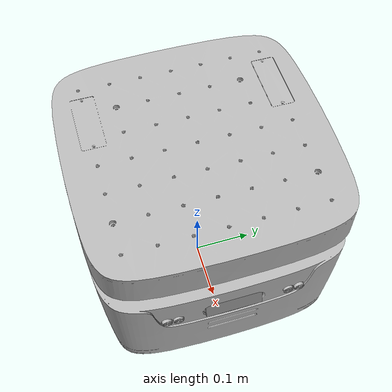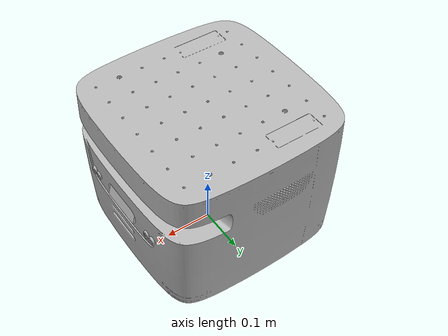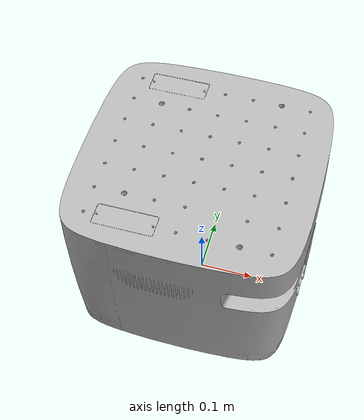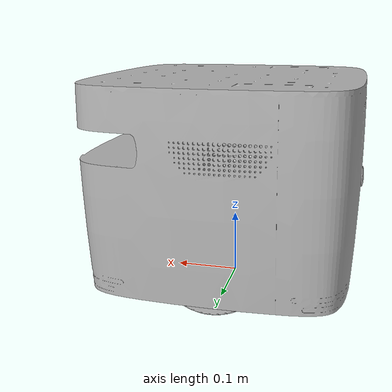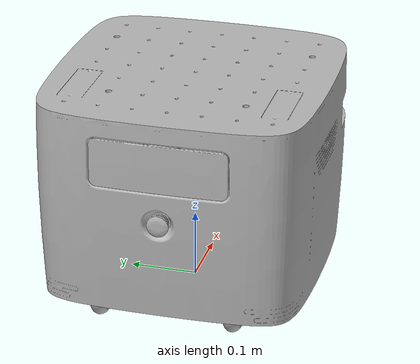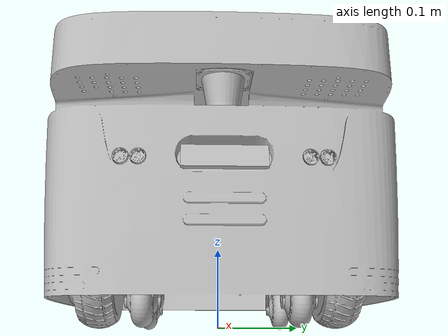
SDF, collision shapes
<sdf version='1.7'>
  <model name='former'>
    <link name='base_footprint'>
      <inertial>
        <pose>0.001784 3.9e-05 0.180433 0 -0 0</pose>
        <mass>33.0362</mass>
        <inertia>
          <ixx>0.64795</ixx>
          <ixy>-0.000223398</ixy>
          <ixz>-0.000878101</ixz>
          <iyy>0.650388</iyy>
          <iyz>2.10397e-05</iyz>
          <izz>0.813857</izz>
        </inertia>
      </inertial>
      <collision name='base_footprint_fixed_joint_lump__base_link_collision'>
        <pose>0 0 0.0845 0 -0 0</pose>
        <geometry>
          <mesh>
            <scale>1 1 1</scale>
            <uri>model://former_description/meshes/collision/base_link.stl</uri>
          </mesh>
        </geometry>
      </collision>
      <collision name='base_footprint_fixed_joint_lump__camera_link_collision_1'>
        <pose>0.184704 0 0.166468 0 -0.261799 0</pose>
        <geometry>
          <box>
            <size>0.02505 0.09 0.025</size>
          </box>
        </geometry>
      </collision>
      <collision name='base_footprint_fixed_joint_lump__f_l_caster_mount_collision_2'>
        <pose>0.125 0.087 0.083 0 -0 0</pose>
        <geometry>
          <mesh>
            <scale>1 1 1</scale>
            <uri>model://former_description/meshes/collision/caster_mount.stl</uri>
          </mesh>
        </geometry>
      </collision>
      <collision name='base_footprint_fixed_joint_lump__f_r_caster_mount_collision_3'>
        <pose>0.125 -0.087 0.083 0 -0 0</pose>
        <geometry>
          <mesh>
            <scale>1 1 1</scale>
            <uri>model://former_description/meshes/collision/caster_mount.stl</uri>
          </mesh>
        </geometry>
      </collision>
      <collision name='base_footprint_fixed_joint_lump__imu_sensor_collision_4'>
        <pose>0.134 0 0.089 0 -0 0</pose>
        <geometry>
          <mesh>
            <scale>1 1 1</scale>
            <uri>model://former_description/meshes/collision/imu.stl</uri>
          </mesh>
        </geometry>
      </collision>
      <collision name='base_footprint_fixed_joint_lump__l_sonar_sensor_collision_5'>
        <pose>0.184 0.0968 0.1685 0 -0 0</pose>
        <geometry>
          <mesh>
            <scale>1 1 1</scale>
            <uri>model://former_description/meshes/collision/sonar_sensor.stl</uri>
          </mesh>
        </geometry>
      </collision>
      <collision name='base_footprint_fixed_joint_lump__l_wheel_mount_collision_6'>
        <pose>0 0.0711 0.0845 0 -0 1.5708</pose>
        <geometry>
          <mesh>
            <scale>1 1 1</scale>
            <uri>model://former_description/meshes/collision/main_wheel_mount.stl</uri>
          </mesh>
        </geometry>
      </collision>
      <collision name='base_footprint_fixed_joint_lump__lidar_mount_collision_7'>
        <pose>0.16 0 0.312 3.14159 -0 0</pose>
        <geometry>
          <mesh>
            <scale>1 1 1</scale>
            <uri>model://former_description/meshes/collision/sick_tim5_lidar.stl</uri>
          </mesh>
        </geometry>
      </collision>
      <collision name='base_footprint_fixed_joint_lump__r_l_caster_mount_collision_8'>
        <pose>-0.128 0.099 0.083 0 -0 0</pose>
        <geometry>
          <mesh>
            <scale>1 1 1</scale>
            <uri>model://former_description/meshes/collision/caster_mount.stl</uri>
          </mesh>
        </geometry>
      </collision>
      <collision name='base_footprint_fixed_joint_lump__r_r_caster_mount_collision_9'>
        <pose>-0.128 -0.099 0.083 0 -0 0</pose>
        <geometry>
          <mesh>
            <scale>1 1 1</scale>
            <uri>model://former_description/meshes/collision/caster_mount.stl</uri>
          </mesh>
        </geometry>
      </collision>
      <collision name='base_footprint_fixed_joint_lump__r_sonar_sensor_collision_10'>
        <pose>0.184 -0.0968 0.1685 0 -0 0</pose>
        <geometry>
          <mesh>
            <scale>1 1 1</scale>
            <uri>model://former_description/meshes/collision/sonar_sensor.stl</uri>
          </mesh>
        </geometry>
      </collision>
      <collision name='base_footprint_fixed_joint_lump__r_wheel_mount_collision_11'>
        <pose>0 -0.0711 0.0845 0 0 -1.5708</pose>
        <geometry>
          <mesh>
            <scale>1 1 1</scale>
            <uri>model://former_description/meshes/collision/main_wheel_mount.stl</uri>
          </mesh>
        </geometry>
      </collision>
      <visual name='base_footprint_fixed_joint_lump__base_link_visual'>
        <pose>0 0 0.0845 0 -0 0</pose>
        <geometry>
          <mesh>
            <scale>1 1 1</scale>
            <uri>model://former_description/meshes/visual/base_link.dae</uri>
          </mesh>
        </geometry>
      </visual>
      <visual name='base_footprint_fixed_joint_lump__camera_link_visual_1'>
        <pose>0.188857 0 0.16758 1.309 -0 1.5708</pose>
        <geometry>
          <mesh>
            <scale>1 1 1</scale>
            <uri>model://realsense2_description/meshes/d435.dae</uri>
          </mesh>
        </geometry>
      </visual>
      <visual name='base_footprint_fixed_joint_lump__f_l_caster_mount_visual_2'>
        <pose>0.125 0.087 0.083 0 -0 0</pose>
        <geometry>
          <mesh>
            <scale>1 1 1</scale>
            <uri>model://former_description/meshes/visual/caster_mount.dae</uri>
          </mesh>
        </geometry>
      </visual>
      <visual name='base_footprint_fixed_joint_lump__f_r_caster_mount_visual_3'>
        <pose>0.125 -0.087 0.083 0 -0 0</pose>
        <geometry>
          <mesh>
            <scale>1 1 1</scale>
            <uri>model://former_description/meshes/visual/caster_mount.dae</uri>
          </mesh>
        </geometry>
      </visual>
      <visual name='base_footprint_fixed_joint_lump__imu_sensor_visual_4'>
        <pose>0.134 0 0.089 0 -0 0</pose>
        <geometry>
          <mesh>
            <scale>1 1 1</scale>
            <uri>model://former_description/meshes/visual/imu.dae</uri>
          </mesh>
        </geometry>
      </visual>
      <visual name='base_footprint_fixed_joint_lump__l_sonar_sensor_visual_5'>
        <pose>0.184 0.0968 0.1685 0 -0 0</pose>
        <geometry>
          <mesh>
            <scale>1 1 1</scale>
            <uri>model://former_description/meshes/visual/sonar_sensor.dae</uri>
          </mesh>
        </geometry>
      </visual>
      <visual name='base_footprint_fixed_joint_lump__l_wheel_mount_visual_6'>
        <pose>0 0.0711 0.0845 0 -0 1.5708</pose>
        <geometry>
          <mesh>
            <scale>1 1 1</scale>
            <uri>model://former_description/meshes/visual/main_wheel_mount.dae</uri>
          </mesh>
        </geometry>
      </visual>
      <visual name='base_footprint_fixed_joint_lump__lidar_mount_visual_7'>
        <pose>0.16 0 0.312 3.14159 -0 0</pose>
        <geometry>
          <mesh>
            <scale>1 1 1</scale>
            <uri>model://former_description/meshes/visual/sick_tim5_lidar.dae</uri>
          </mesh>
        </geometry>
      </visual>
      <visual name='base_footprint_fixed_joint_lump__r_l_caster_mount_visual_8'>
        <pose>-0.128 0.099 0.083 0 -0 0</pose>
        <geometry>
          <mesh>
            <scale>1 1 1</scale>
            <uri>model://former_description/meshes/visual/caster_mount.dae</uri>
          </mesh>
        </geometry>
      </visual>
      <visual name='base_footprint_fixed_joint_lump__r_r_caster_mount_visual_9'>
        <pose>-0.128 -0.099 0.083 0 -0 0</pose>
        <geometry>
          <mesh>
            <scale>1 1 1</scale>
            <uri>model://former_description/meshes/visual/caster_mount.dae</uri>
          </mesh>
        </geometry>
      </visual>
      <visual name='base_footprint_fixed_joint_lump__r_sonar_sensor_visual_10'>
        <pose>0.184 -0.0968 0.1685 0 -0 0</pose>
        <geometry>
          <mesh>
            <scale>1 1 1</scale>
            <uri>model://former_description/meshes/visual/sonar_sensor.dae</uri>
          </mesh>
        </geometry>
      </visual>
      <visual name='base_footprint_fixed_joint_lump__r_wheel_mount_visual_11'>
        <pose>0 -0.0711 0.0845 0 0 -1.5708</pose>
        <geometry>
          <mesh>
            <scale>1 1 1</scale>
            <uri>model://former_description/meshes/visual/main_wheel_mount.dae</uri>
          </mesh>
        </geometry>
      </visual>
      <self_collide>0</self_collide>
    </link>
    <joint name='f_l_caster_rotate_joint' type='revolute'>
      <pose relative_to='base_footprint'>0.125 0.087 0.073 0 -0 0</pose>
      <parent>base_footprint</parent>
      <child>f_l_caster_rotate</child>
      <axis>
        <xyz>0 0 1</xyz>
        <limit>
          <lower>-1e+16</lower>
          <upper>1e+16</upper>
        </limit>
        <dynamics>
          <spring_reference>0</spring_reference>
          <spring_stiffness>0</spring_stiffness>
        </dynamics>
      </axis>
    </joint>
    <link name='f_l_caster_rotate'>
      <pose relative_to='f_l_caster_rotate_joint'>0 0 0 0 -0 0</pose>
      <inertial>
        <pose>-0.012 0 -0.021 0 -0 0</pose>
        <mass>0.060591</mass>
        <inertia>
          <ixx>2e-05</ixx>
          <ixy>0</ixy>
          <ixz>-4e-06</ixz>
          <iyy>2.2e-05</iyy>
          <iyz>0</iyz>
          <izz>2e-05</izz>
        </inertia>
      </inertial>
      <collision name='f_l_caster_rotate_collision'>
        <pose>0 0 0 0 -0 0</pose>
        <geometry>
          <mesh>
            <scale>1 1 1</scale>
            <uri>model://former_description/meshes/collision/caster_rotate.stl</uri>
          </mesh>
        </geometry>
      </collision>
      <visual name='f_l_caster_rotate_visual'>
        <pose>0 0 0 0 -0 0</pose>
        <geometry>
          <mesh>
            <scale>1 1 1</scale>
            <uri>model://former_description/meshes/visual/caster_rotate.dae</uri>
          </mesh>
        </geometry>
      </visual>
    </link>
    <joint name='f_l_caster_wheel_joint' type='revolute'>
      <pose relative_to='f_l_caster_rotate'>-0.0235 0 -0.0415 0 -0 0</pose>
      <parent>f_l_caster_rotate</parent>
      <child>f_l_caster_wheel</child>
      <axis>
        <xyz>0 1 0</xyz>
        <limit>
          <lower>-1e+16</lower>
          <upper>1e+16</upper>
        </limit>
        <dynamics>
          <spring_reference>0</spring_reference>
          <spring_stiffness>0</spring_stiffness>
        </dynamics>
      </axis>
    </joint>
    <link name='f_l_caster_wheel'>
      <pose relative_to='f_l_caster_wheel_joint'>0 0 0 0 -0 0</pose>
      <inertial>
        <pose>0 0 0 0 -0 0</pose>
        <mass>0.051842</mass>
        <inertia>
          <ixx>1.3e-05</ixx>
          <ixy>0</ixy>
          <ixz>0</ixz>
          <iyy>2.1e-05</iyy>
          <iyz>0</iyz>
          <izz>1.3e-05</izz>
        </inertia>
      </inertial>
      <collision name='f_l_caster_wheel_collision'>
        <pose>0 0 0 0 -0 0</pose>
        <geometry>
          <mesh>
            <scale>1 1 1</scale>
            <uri>model://former_description/meshes/collision/caster_wheel.stl</uri>
          </mesh>
        </geometry>
        <surface>
          <contact>
            <ode>
              <kp>1e+07</kp>
              <kd>1</kd>
            </ode>
          </contact>
          <friction>
            <ode>
              <mu>1</mu>
              <mu2>1</mu2>
            </ode>
          </friction>
        </surface>
      </collision>
      <visual name='f_l_caster_wheel_visual'>
        <pose>0 0 0 0 -0 0</pose>
        <geometry>
          <mesh>
            <scale>1 1 1</scale>
            <uri>model://former_description/meshes/visual/caster_wheel.dae</uri>
          </mesh>
        </geometry>
      </visual>
    </link>
    <joint name='f_r_caster_rotate_joint' type='revolute'>
      <pose relative_to='base_footprint'>0.125 -0.087 0.073 0 -0 0</pose>
      <parent>base_footprint</parent>
      <child>f_r_caster_rotate</child>
      <axis>
        <xyz>0 0 1</xyz>
        <limit>
          <lower>-1e+16</lower>
          <upper>1e+16</upper>
        </limit>
        <dynamics>
          <spring_reference>0</spring_reference>
          <spring_stiffness>0</spring_stiffness>
        </dynamics>
      </axis>
    </joint>
    <link name='f_r_caster_rotate'>
      <pose relative_to='f_r_caster_rotate_joint'>0 0 0 0 -0 0</pose>
      <inertial>
        <pose>-0.012 0 -0.021 0 -0 0</pose>
        <mass>0.060591</mass>
        <inertia>
          <ixx>2e-05</ixx>
          <ixy>0</ixy>
          <ixz>-4e-06</ixz>
          <iyy>2.2e-05</iyy>
          <iyz>0</iyz>
          <izz>2e-05</izz>
        </inertia>
      </inertial>
      <collision name='f_r_caster_rotate_collision'>
        <pose>0 0 0 0 -0 0</pose>
        <geometry>
          <mesh>
            <scale>1 1 1</scale>
            <uri>model://former_description/meshes/collision/caster_rotate.stl</uri>
          </mesh>
        </geometry>
      </collision>
      <visual name='f_r_caster_rotate_visual'>
        <pose>0 0 0 0 -0 0</pose>
        <geometry>
          <mesh>
            <scale>1 1 1</scale>
            <uri>model://former_description/meshes/visual/caster_rotate.dae</uri>
          </mesh>
        </geometry>
      </visual>
    </link>
    <joint name='f_r_caster_wheel_joint' type='revolute'>
      <pose relative_to='f_r_caster_rotate'>-0.0235 0 -0.0415 0 -0 0</pose>
      <parent>f_r_caster_rotate</parent>
      <child>f_r_caster_wheel</child>
      <axis>
        <xyz>0 1 0</xyz>
        <limit>
          <lower>-1e+16</lower>
          <upper>1e+16</upper>
        </limit>
        <dynamics>
          <spring_reference>0</spring_reference>
          <spring_stiffness>0</spring_stiffness>
        </dynamics>
      </axis>
    </joint>
    <link name='f_r_caster_wheel'>
      <pose relative_to='f_r_caster_wheel_joint'>0 0 0 0 -0 0</pose>
      <inertial>
        <pose>0 0 0 0 -0 0</pose>
        <mass>0.051842</mass>
        <inertia>
          <ixx>1.3e-05</ixx>
          <ixy>0</ixy>
          <ixz>0</ixz>
          <iyy>2.1e-05</iyy>
          <iyz>0</iyz>
          <izz>1.3e-05</izz>
        </inertia>
      </inertial>
      <collision name='f_r_caster_wheel_collision'>
        <pose>0 0 0 0 -0 0</pose>
        <geometry>
          <mesh>
            <scale>1 1 1</scale>
            <uri>model://former_description/meshes/collision/caster_wheel.stl</uri>
          </mesh>
        </geometry>
        <surface>
          <contact>
            <ode>
              <kp>1e+07</kp>
              <kd>1</kd>
            </ode>
          </contact>
          <friction>
            <ode>
              <mu>1</mu>
              <mu2>1</mu2>
            </ode>
          </friction>
        </surface>
      </collision>
      <visual name='f_r_caster_wheel_visual'>
        <pose>0 0 0 0 -0 0</pose>
        <geometry>
          <mesh>
            <scale>1 1 1</scale>
            <uri>model://former_description/meshes/visual/caster_wheel.dae</uri>
          </mesh>
        </geometry>
      </visual>
    </link>
    <joint name='l_wheel_joint' type='revolute'>
      <pose relative_to='base_footprint'>0 0.1221 0.0845 0 -0 0</pose>
      <parent>base_footprint</parent>
      <child>l_wheel</child>
      <axis>
        <xyz>0 1 0</xyz>
        <limit>
          <lower>-1e+16</lower>
          <upper>1e+16</upper>
        </limit>
        <dynamics>
          <spring_reference>0</spring_reference>
          <spring_stiffness>0</spring_stiffness>
        </dynamics>
      </axis>
    </joint>
    <link name='l_wheel'>
      <pose relative_to='l_wheel_joint'>0 0 0 0 -0 0</pose>
      <inertial>
        <pose>0 0.031 0 0 -0 0</pose>
        <mass>0.843041</mass>
        <inertia>
          <ixx>0.002632</ixx>
          <ixy>0</ixy>
          <ixz>0</ixz>
          <iyy>0.001536</iyy>
          <iyz>0</iyz>
          <izz>0.001536</izz>
        </inertia>
      </inertial>
      <collision name='l_wheel_collision'>
        <pose>0 0 0 0 -0 1.5708</pose>
        <geometry>
          <mesh>
            <scale>1 1 1</scale>
            <uri>model://former_description/meshes/collision/main_wheel.stl</uri>
          </mesh>
        </geometry>
        <surface>
          <contact>
            <ode>
              <kp>1e+07</kp>
              <kd>1</kd>
            </ode>
          </contact>
          <friction>
            <ode>
              <mu>200</mu>
              <mu2>200</mu2>
            </ode>
          </friction>
        </surface>
      </collision>
      <visual name='l_wheel_visual'>
        <pose>0 0 0 0 -0 1.5708</pose>
        <geometry>
          <mesh>
            <scale>1 1 1</scale>
            <uri>model://former_description/meshes/visual/main_wheel.dae</uri>
          </mesh>
        </geometry>
      </visual>
    </link>
    <joint name='r_l_caster_rotate_joint' type='revolute'>
      <pose relative_to='base_footprint'>-0.128 0.099 0.073 0 -0 0</pose>
      <parent>base_footprint</parent>
      <child>r_l_caster_rotate</child>
      <axis>
        <xyz>0 0 1</xyz>
        <limit>
          <lower>-1e+16</lower>
          <upper>1e+16</upper>
        </limit>
        <dynamics>
          <spring_reference>0</spring_reference>
          <spring_stiffness>0</spring_stiffness>
        </dynamics>
      </axis>
    </joint>
    <link name='r_l_caster_rotate'>
      <pose relative_to='r_l_caster_rotate_joint'>0 0 0 0 -0 0</pose>
      <inertial>
        <pose>-0.012 0 -0.021 0 -0 0</pose>
        <mass>0.060591</mass>
        <inertia>
          <ixx>2e-05</ixx>
          <ixy>0</ixy>
          <ixz>-4e-06</ixz>
          <iyy>2.2e-05</iyy>
          <iyz>0</iyz>
          <izz>2e-05</izz>
        </inertia>
      </inertial>
      <collision name='r_l_caster_rotate_collision'>
        <pose>0 0 0 0 -0 0</pose>
        <geometry>
          <mesh>
            <scale>1 1 1</scale>
            <uri>model://former_description/meshes/collision/caster_rotate.stl</uri>
          </mesh>
        </geometry>
      </collision>
      <visual name='r_l_caster_rotate_visual'>
        <pose>0 0 0 0 -0 0</pose>
        <geometry>
          <mesh>
            <scale>1 1 1</scale>
            <uri>model://former_description/meshes/visual/caster_rotate.dae</uri>
          </mesh>
        </geometry>
      </visual>
    </link>
    <joint name='r_l_caster_wheel_joint' type='revolute'>
      <pose relative_to='r_l_caster_rotate'>-0.0235 0 -0.0415 0 -0 0</pose>
      <parent>r_l_caster_rotate</parent>
      <child>r_l_caster_wheel</child>
      <axis>
        <xyz>0 1 0</xyz>
        <limit>
          <lower>-1e+16</lower>
          <upper>1e+16</upper>
        </limit>
        <dynamics>
          <spring_reference>0</spring_reference>
          <spring_stiffness>0</spring_stiffness>
        </dynamics>
      </axis>
    </joint>
    <link name='r_l_caster_wheel'>
      <pose relative_to='r_l_caster_wheel_joint'>0 0 0 0 -0 0</pose>
      <inertial>
        <pose>0 0 0 0 -0 0</pose>
        <mass>0.051842</mass>
        <inertia>
          <ixx>1.3e-05</ixx>
          <ixy>0</ixy>
          <ixz>0</ixz>
          <iyy>2.1e-05</iyy>
          <iyz>0</iyz>
          <izz>1.3e-05</izz>
        </inertia>
      </inertial>
      <collision name='r_l_caster_wheel_collision'>
        <pose>0 0 0 0 -0 0</pose>
        <geometry>
          <mesh>
            <scale>1 1 1</scale>
            <uri>model://former_description/meshes/collision/caster_wheel.stl</uri>
          </mesh>
        </geometry>
        <surface>
          <contact>
            <ode>
              <kp>1e+07</kp>
              <kd>1</kd>
            </ode>
          </contact>
          <friction>
            <ode>
              <mu>1</mu>
              <mu2>1</mu2>
            </ode>
          </friction>
        </surface>
      </collision>
      <visual name='r_l_caster_wheel_visual'>
        <pose>0 0 0 0 -0 0</pose>
        <geometry>
          <mesh>
            <scale>1 1 1</scale>
            <uri>model://former_description/meshes/visual/caster_wheel.dae</uri>
          </mesh>
        </geometry>
      </visual>
    </link>
    <joint name='r_r_caster_rotate_joint' type='revolute'>
      <pose relative_to='base_footprint'>-0.128 -0.099 0.073 0 -0 0</pose>
      <parent>base_footprint</parent>
      <child>r_r_caster_rotate</child>
      <axis>
        <xyz>0 0 1</xyz>
        <limit>
          <lower>-1e+16</lower>
          <upper>1e+16</upper>
        </limit>
        <dynamics>
          <spring_reference>0</spring_reference>
          <spring_stiffness>0</spring_stiffness>
        </dynamics>
      </axis>
    </joint>
    <link name='r_r_caster_rotate'>
      <pose relative_to='r_r_caster_rotate_joint'>0 0 0 0 -0 0</pose>
      <inertial>
        <pose>-0.012 0 -0.021 0 -0 0</pose>
        <mass>0.060591</mass>
        <inertia>
          <ixx>2e-05</ixx>
          <ixy>0</ixy>
          <ixz>-4e-06</ixz>
          <iyy>2.2e-05</iyy>
          <iyz>0</iyz>
          <izz>2e-05</izz>
        </inertia>
      </inertial>
      <collision name='r_r_caster_rotate_collision'>
        <pose>0 0 0 0 -0 0</pose>
        <geometry>
          <mesh>
            <scale>1 1 1</scale>
            <uri>model://former_description/meshes/collision/caster_rotate.stl</uri>
          </mesh>
        </geometry>
      </collision>
      <visual name='r_r_caster_rotate_visual'>
        <pose>0 0 0 0 -0 0</pose>
        <geometry>
          <mesh>
            <scale>1 1 1</scale>
            <uri>model://former_description/meshes/visual/caster_rotate.dae</uri>
          </mesh>
        </geometry>
      </visual>
    </link>
    <joint name='r_r_caster_wheel_joint' type='revolute'>
      <pose relative_to='r_r_caster_rotate'>-0.0235 0 -0.0415 0 -0 0</pose>
      <parent>r_r_caster_rotate</parent>
      <child>r_r_caster_wheel</child>
      <axis>
        <xyz>0 1 0</xyz>
        <limit>
          <lower>-1e+16</lower>
          <upper>1e+16</upper>
        </limit>
        <dynamics>
          <spring_reference>0</spring_reference>
          <spring_stiffness>0</spring_stiffness>
        </dynamics>
      </axis>
    </joint>
    <link name='r_r_caster_wheel'>
      <pose relative_to='r_r_caster_wheel_joint'>0 0 0 0 -0 0</pose>
      <inertial>
        <pose>0 0 0 0 -0 0</pose>
        <mass>0.051842</mass>
        <inertia>
          <ixx>1.3e-05</ixx>
          <ixy>0</ixy>
          <ixz>0</ixz>
          <iyy>2.1e-05</iyy>
          <iyz>0</iyz>
          <izz>1.3e-05</izz>
        </inertia>
      </inertial>
      <collision name='r_r_caster_wheel_collision'>
        <pose>0 0 0 0 -0 0</pose>
        <geometry>
          <mesh>
            <scale>1 1 1</scale>
            <uri>model://former_description/meshes/collision/caster_wheel.stl</uri>
          </mesh>
        </geometry>
        <surface>
          <contact>
            <ode>
              <kp>1e+07</kp>
              <kd>1</kd>
            </ode>
          </contact>
          <friction>
            <ode>
              <mu>1</mu>
              <mu2>1</mu2>
            </ode>
          </friction>
        </surface>
      </collision>
      <visual name='r_r_caster_wheel_visual'>
        <pose>0 0 0 0 -0 0</pose>
        <geometry>
          <mesh>
            <scale>1 1 1</scale>
            <uri>model://former_description/meshes/visual/caster_wheel.dae</uri>
          </mesh>
        </geometry>
      </visual>
    </link>
    <joint name='r_wheel_joint' type='revolute'>
      <pose relative_to='base_footprint'>0 -0.1221 0.0845 0 -0 0</pose>
      <parent>base_footprint</parent>
      <child>r_wheel</child>
      <axis>
        <xyz>0 1 0</xyz>
        <limit>
          <lower>-1e+16</lower>
          <upper>1e+16</upper>
        </limit>
        <dynamics>
          <spring_reference>0</spring_reference>
          <spring_stiffness>0</spring_stiffness>
        </dynamics>
      </axis>
    </joint>
    <link name='r_wheel'>
      <pose relative_to='r_wheel_joint'>0 0 0 0 -0 0</pose>
      <inertial>
        <pose>0 -0.031 0 0 -0 0</pose>
        <mass>0.843041</mass>
        <inertia>
          <ixx>0.002632</ixx>
          <ixy>0</ixy>
          <ixz>0</ixz>
          <iyy>0.001536</iyy>
          <iyz>0</iyz>
          <izz>0.001536</izz>
        </inertia>
      </inertial>
      <collision name='r_wheel_collision'>
        <pose>0 0 0 0 0 -1.5708</pose>
        <geometry>
          <mesh>
            <scale>1 1 1</scale>
            <uri>model://former_description/meshes/collision/main_wheel.stl</uri>
          </mesh>
        </geometry>
        <surface>
          <contact>
            <ode>
              <kp>1e+07</kp>
              <kd>1</kd>
            </ode>
          </contact>
          <friction>
            <ode>
              <mu>200</mu>
              <mu2>200</mu2>
            </ode>
          </friction>
        </surface>
      </collision>
      <visual name='r_wheel_visual'>
        <pose>0 0 0 0 0 -1.5708</pose>
        <geometry>
          <mesh>
            <scale>1 1 1</scale>
            <uri>model://former_description/meshes/visual/main_wheel.dae</uri>
          </mesh>
        </geometry>
      </visual>
    </link>
  </model>
</sdf>
